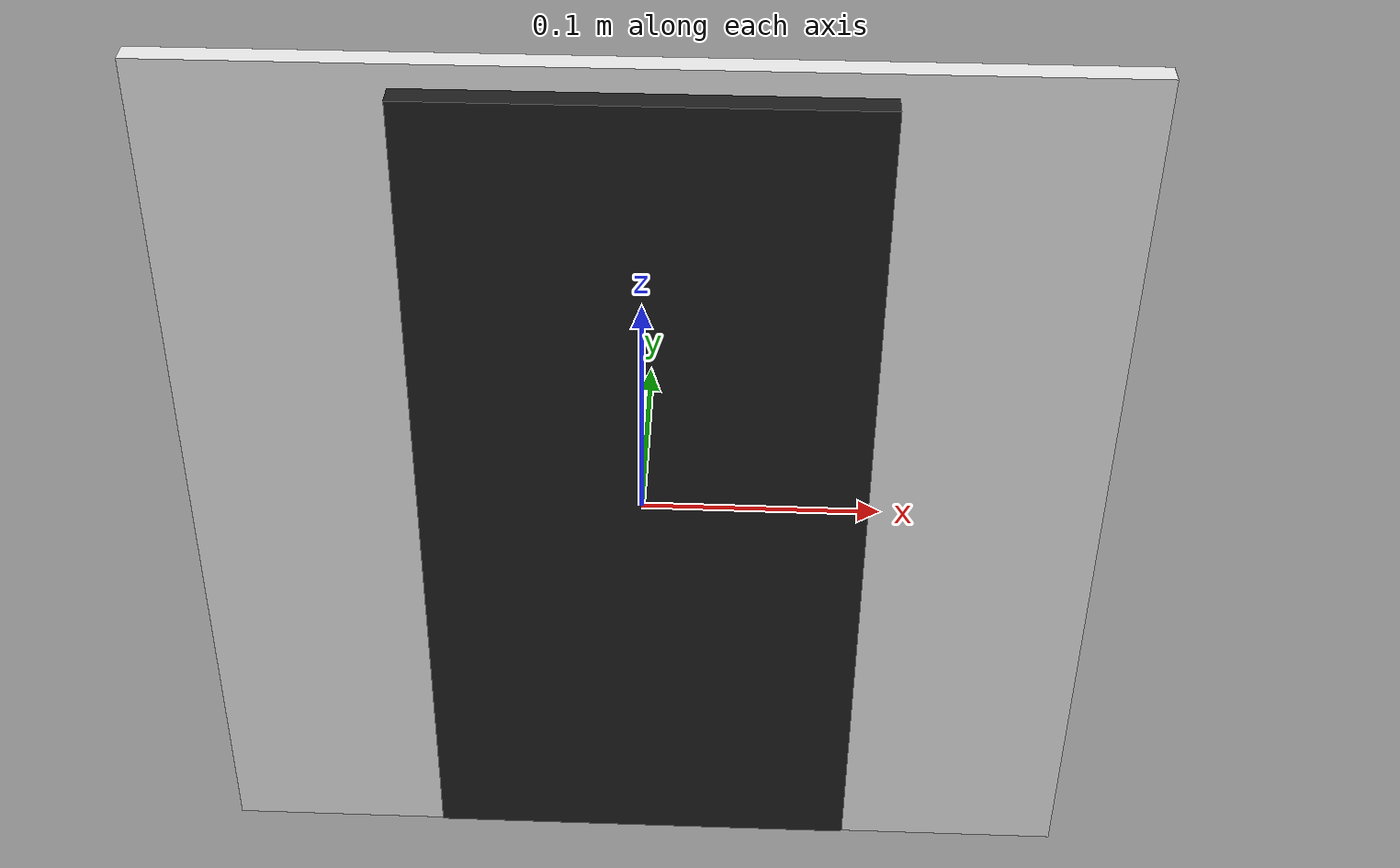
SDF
<?xml version="1.0" encoding="UTF-8"?>
<sdf version="1.5">
  <model name="scan_the_code">
    <static>true</static>
    <link name="base_link">
      <visual name="visual_base">
        <pose>0 0.01 0 0 0 0</pose>
        <geometry>
          <box>
            <size>.39 .01 .401</size>
          </box>
        </geometry>
        <material>
          <script>
            <uri>file://media/materials/scripts/gazebo.material</uri>
            <name>Gazebo/White</name>
          </script>
        </material>
      </visual>
      <visual name="visual">
        <pose>0 0 0 0 0 0</pose>
        <geometry>
          <box>
            <size>.19 .01 .381</size>
          </box>
        </geometry>
        <material>
          <script>
            <uri>file://media/materials/scripts/gazebo.material</uri>
            <name>Gazebo/Black</name>
          </script>
        </material>
        <plugin name="model_push" filename="libanimated_box.so" />
      </visual>
      <collision name="collision">
        <geometry>
          <box>
            <size>.39 .02 .401</size>
          </box>
        </geometry>
      </collision>
    </link>
  </model>
</sdf>
